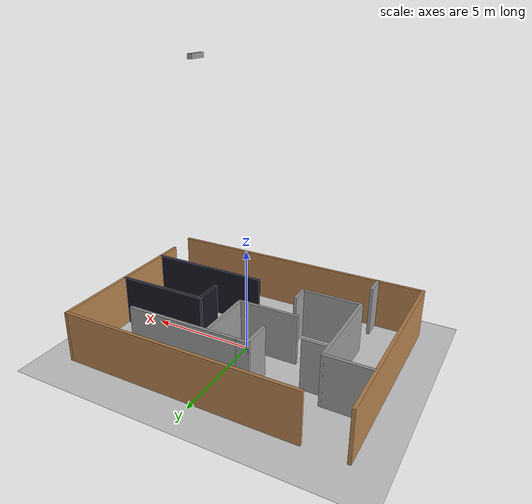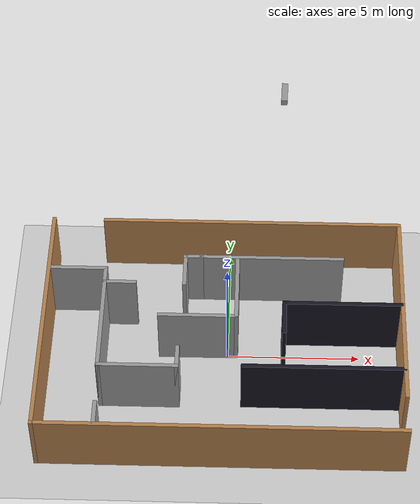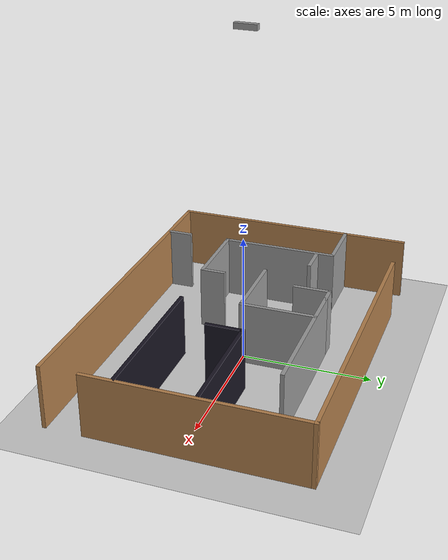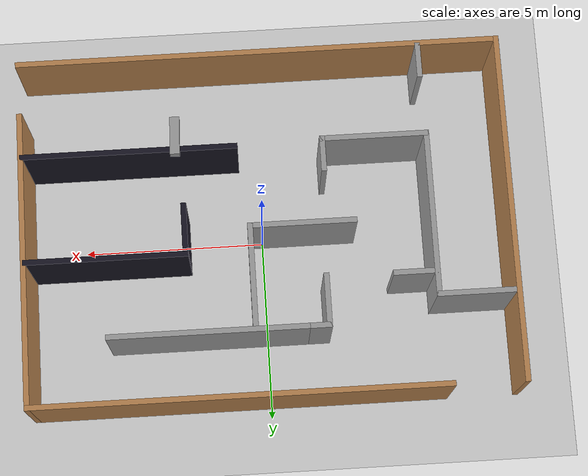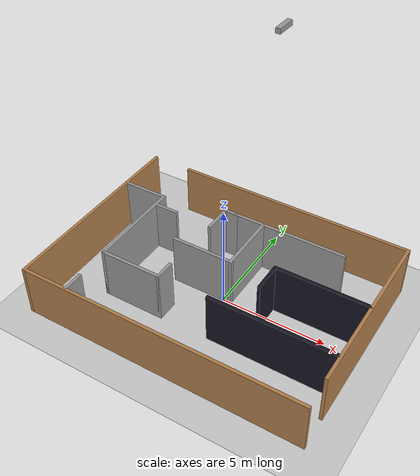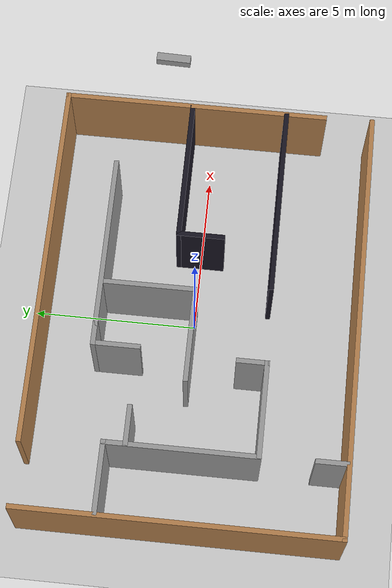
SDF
<sdf version="1.7">
 <world name="default">
  <light name="sun" type="directional">
   <pose>0 0 10 0 -0 0</pose>
   <diffuse>0.8 0.8 0.8 1</diffuse>
   <specular>0.2 0.2 0.2 1</specular>
   <attenuation>
    <range>1000</range>
    <constant>0.9</constant>
    <linear>0.01</linear>
    <quadratic>0.001</quadratic>
   </attenuation>
   <direction>-0.5 0.1 -0.9</direction>
   <spot><inner_angle>0</inner_angle><outer_angle>0</outer_angle><falloff>0</falloff></spot>
  </light>
  <model name="ground_plane">
   <static>1</static>
   <link name="link">
    <collision name="collision">
     <geometry><plane><normal>0 0 1</normal><size>100 100</size></plane></geometry>
     <surface>
      <contact><collide_bitmask>65535</collide_bitmask></contact>
      <friction><ode><mu>100</mu><mu2>50</mu2></ode></friction>
     </surface>
    </collision>
    <visual name="visual">
     <cast_shadows>0</cast_shadows>
     <geometry><plane><normal>0 0 1</normal><size>100 100</size></plane></geometry>
     <material>
      <script><uri>file://media/materials/scripts/gazebo.material</uri><name>Gazebo/Grey</name></script>
     </material>
    </visual>
   </link>
  </model>
  <gravity>0 0 -9.8</gravity>
  <magnetic_field>6e-06 2.3e-05 -4.2e-05</magnetic_field>
  <atmosphere type="adiabatic"/>
  <physics type="ode">
   <max_step_size>0.001</max_step_size>
   <real_time_factor>1</real_time_factor>
   <real_time_update_rate>1000</real_time_update_rate>
  </physics>
  <scene><ambient>0.4 0.4 0.4 1</ambient><background>0.7 0.7 0.7 1</background><shadows>1</shadows></scene>
  <audio><device>default</device></audio>
  <spherical_coordinates>
   <surface_model>EARTH_WGS84</surface_model>
   <latitude_deg>0</latitude_deg>
   <longitude_deg>0</longitude_deg>
   <elevation>0</elevation>
   <heading_deg>0</heading_deg>
  </spherical_coordinates>
  <model name="Maze_Model">
   <pose>-0.15256 -0.147687 0 0 -0 0</pose>
   <link name="Wall_103">
    <collision name="Wall_103_Collision">
     <geometry><box><size>9.75 0.15 2.5</size></box></geometry>
     <pose>0 0 1.25 0 -0 0</pose>
    </collision>
    <visual name="Wall_103_Visual">
     <pose>0 0 1.25 0 -0 0</pose>
     <geometry><box><size>9.75 0.15 2.5</size></box></geometry>
     <material>
      <script><uri>file://media/materials/scripts/gazebo.material</uri><name>Gazebo/Wood</name></script>
      <ambient>1 1 1 1</ambient>
     </material>
     <meta><layer>0</layer></meta>
    </visual>
    <pose>-6.675 -0.002144 0 0 -0 -1.5708</pose>
   </link>
   <link name="Wall_104">
    <collision name="Wall_104_Collision">
     <geometry><box><size>13.5 0.15 2.5</size></box></geometry>
     <pose>0 0 1.25 0 -0 0</pose>
    </collision>
    <visual name="Wall_104_Visual">
     <pose>0 0 1.25 0 -0 0</pose>
     <geometry><box><size>13.5 0.15 2.5</size></box></geometry>
     <material>
      <script><uri>file://media/materials/scripts/gazebo.material</uri><name>Gazebo/Wood</name></script>
      <ambient>1 1 1 1</ambient>
     </material>
     <meta><layer>0</layer></meta>
    </visual>
    <pose>0 -4.80214 0 0 -0 0</pose>
   </link>
   <link name="Wall_108">
    <collision name="Wall_108_Collision">
     <geometry><box><size>8.25 0.15 2.5</size></box></geometry>
     <pose>0 0 1.25 0 -0 0</pose>
    </collision>
    <visual name="Wall_108_Visual">
     <pose>0 0 1.25 0 -0 0</pose>
     <geometry><box><size>8.25 0.15 2.5</size></box></geometry>
     <material>
      <script><uri>file://media/materials/scripts/gazebo.material</uri><name>Gazebo/Wood</name></script>
      <ambient>1 1 1 1</ambient>
     </material>
     <meta><layer>0</layer></meta>
    </visual>
    <pose>6.67136 0.752144 0 0 -0 1.5708</pose>
   </link>
   <link name="Wall_110">
    <collision name="Wall_110_Collision">
     <geometry><box><size>11.5 0.15 2.5</size></box></geometry>
     <pose>0 0 1.25 0 -0 0</pose>
    </collision>
    <visual name="Wall_110_Visual">
     <pose>0 0 1.25 0 -0 0</pose>
     <geometry><box><size>11.5 0.15 2.5</size></box></geometry>
     <material>
      <script><uri>file://media/materials/scripts/gazebo.material</uri><name>Gazebo/Wood</name></script>
      <ambient>1 1 1 1</ambient>
     </material>
     <meta><layer>0</layer></meta>
    </visual>
    <pose>0.996361 4.80214 0 0 -0 3.14159</pose>
   </link>
   <link name="Wall_42">
    <collision name="Wall_42_Collision">
     <geometry><box><size>1 0.15 2.5</size></box></geometry>
     <pose>0 0 1.25 0 -0 0</pose>
    </collision>
    <visual name="Wall_42_Visual">
     <pose>0 0 1.25 0 -0 0</pose>
     <geometry><box><size>1 0.15 2.5</size></box></geometry>
     <material>
      <script><uri>file://media/materials/scripts/gazebo.material</uri><name>Gazebo/Grey</name></script>
      <ambient>0 0 0 1</ambient>
     </material>
     <meta><layer>0</layer></meta>
    </visual>
    <pose>-4.47101 -4.30501 0 0 -0 1.5708</pose>
   </link>
   <link name="Wall_45">
    <collision name="Wall_45_Collision">
     <geometry><box><size>6 0.15 2.5</size></box></geometry>
     <pose>0 0 1.25 0 -0 0</pose>
    </collision>
    <visual name="Wall_45_Visual">
     <pose>0 0 1.25 0 -0 0</pose>
     <geometry><box><size>6 0.15 2.5</size></box></geometry>
     <material>
      <script><uri>file://media/materials/scripts/gazebo.material</uri><name>Gazebo/Grey</name></script>
      <ambient>0.0901961 0.0784314 0.129412 1</ambient>
     </material>
     <meta><layer>0</layer></meta>
    </visual>
    <pose>3.69883 -2.11008 0 0 -0 3.14159</pose>
   </link>
   <link name="Wall_55">
    <collision name="Wall_55_Collision">
     <geometry><box><size>2.25 0.15 2.5</size></box></geometry>
     <pose>0 0 1.25 0 -0 0</pose>
    </collision>
    <visual name="Wall_55_Visual">
     <pose>0 0 1.25 0 -0 0</pose>
     <geometry><box><size>2.25 0.15 2.5</size></box></geometry>
     <material>
      <script><uri>file://media/materials/scripts/gazebo.material</uri><name>Gazebo/Grey</name></script>
      <ambient>0 0 0 1</ambient>
     </material>
     <meta><layer>0</layer></meta>
    </visual>
    <pose>-5.56225 2.35601 0 0 -0 0</pose>
   </link>
   <link name="Wall_57">
    <collision name="Wall_57_Collision">
     <geometry><box><size>4.68504 0.15 2.5</size></box></geometry>
     <pose>0 0 1.25 0 -0 0</pose>
    </collision>
    <visual name="Wall_57_Visual">
     <pose>0 0 1.25 0 -0 0</pose>
     <geometry><box><size>4.68504 0.15 2.5</size></box></geometry>
     <material>
      <script><uri>file://media/materials/scripts/gazebo.material</uri><name>Gazebo/Grey</name></script>
      <ambient>0 0 0 1</ambient>
     </material>
     <meta><layer>0</layer></meta>
    </visual>
    <pose>-4.51225 0.088489 0 0 -0 -1.5708</pose>
   </link>
   <link name="Wall_59">
    <collision name="Wall_59_Collision">
     <geometry><box><size>3 0.15 2.5</size></box></geometry>
     <pose>0 0 1.25 0 -0 0</pose>
    </collision>
    <visual name="Wall_59_Visual">
     <pose>0 0 1.25 0 -0 0</pose>
     <geometry><box><size>3 0.15 2.5</size></box></geometry>
     <material>
      <script><uri>file://media/materials/scripts/gazebo.material</uri><name>Gazebo/Grey</name></script>
      <ambient>0 0 0 1</ambient>
     </material>
     <meta><layer>0</layer></meta>
    </visual>
    <pose>-3.06412 -2.17903 0 0 -0 0</pose>
   </link>
   <link name="Wall_70">
    <collision name="Wall_70_Collision">
     <geometry><box><size>5.5 0.15 2.5</size></box></geometry>
     <pose>0 0 1.25 0 -0 0</pose>
    </collision>
    <visual name="Wall_70_Visual">
     <pose>0 0 1.25 0 -0 0</pose>
     <geometry><box><size>5.5 0.15 2.5</size></box></geometry>
     <material>
      <script><uri>file://media/materials/scripts/gazebo.material</uri><name>Gazebo/Grey</name></script>
      <ambient>0 0 0 1</ambient>
     </material>
     <meta><layer>0</layer></meta>
    </visual>
    <pose>1.76918 3.0268 0 0 -0 3.14159</pose>
   </link>
   <link name="Wall_71">
    <collision name="Wall_71_Collision">
     <geometry><box><size>0.75 0.15 2.5</size></box></geometry>
     <pose>0 0 1.25 0 -0 0</pose>
    </collision>
    <visual name="Wall_71_Visual">
     <pose>0 0 1.25 0 -0 0</pose>
     <geometry><box><size>0.75 0.15 2.5</size></box></geometry>
     <material>
      <script><uri>file://media/materials/scripts/gazebo.material</uri><name>Gazebo/Grey</name></script>
      <ambient>0 0 0 1</ambient>
     </material>
     <meta><layer>0</layer></meta>
    </visual>
    <pose>-1.20582 3.0268 0 0 -0 3.14159</pose>
   </link>
   <link name="Wall_72">
    <collision name="Wall_72_Collision">
     <geometry><box><size>1.5 0.15 2.5</size></box></geometry>
     <pose>0 0 1.25 0 -0 0</pose>
    </collision>
    <visual name="Wall_72_Visual">
     <pose>0 0 1.25 0 -0 0</pose>
     <geometry><box><size>1.5 0.15 2.5</size></box></geometry>
     <material>
      <script><uri>file://media/materials/scripts/gazebo.material</uri><name>Gazebo/Grey</name></script>
      <ambient>0 0 0 1</ambient>
     </material>
     <meta><layer>0</layer></meta>
    </visual>
    <pose>-1.50582 2.3518 0 0 -0 -1.5708</pose>
   </link>
   <link name="Wall_76">
    <collision name="Wall_76_Collision">
     <geometry><box><size>3 0.15 2.5</size></box></geometry>
     <pose>0 0 1.25 0 -0 0</pose>
    </collision>
    <visual name="Wall_76_Visual">
     <pose>0 0 1.25 0 -0 0</pose>
     <geometry><box><size>3 0.15 2.5</size></box></geometry>
     <material>
      <script><uri>file://media/materials/scripts/gazebo.material</uri><name>Gazebo/Grey</name></script>
      <ambient>0 0 0 1</ambient>
     </material>
     <meta><layer>0</layer></meta>
    </visual>
    <pose>0.480278 1.59425 0 0 -0 -1.5708</pose>
   </link>
   <link name="Wall_77">
    <collision name="Wall_77_Collision">
     <geometry><box><size>3 0.15 2.5</size></box></geometry>
     <pose>0 0 1.25 0 -0 0</pose>
    </collision>
    <visual name="Wall_77_Visual">
     <pose>0 0 1.25 0 -0 0</pose>
     <geometry><box><size>3 0.15 2.5</size></box></geometry>
     <material>
      <script><uri>file://media/materials/scripts/gazebo.material</uri><name>Gazebo/Grey</name></script>
      <ambient>0 0 0 1</ambient>
     </material>
     <meta><layer>0</layer></meta>
    </visual>
    <pose>-0.944721 0.169255 0 0 -0 3.14159</pose>
   </link>
   <link name="Wall_79">
    <collision name="Wall_79_Collision">
     <geometry><box><size>1.25 0.15 2.5</size></box></geometry>
     <pose>0 0 1.25 0 -0 0</pose>
    </collision>
    <visual name="Wall_79_Visual">
     <pose>0 0 1.25 0 -0 0</pose>
     <geometry><box><size>1.25 0.15 2.5</size></box></geometry>
     <material>
      <script><uri>file://media/materials/scripts/gazebo.material</uri><name>Gazebo/Grey</name></script>
      <ambient>0 0 0 1</ambient>
     </material>
     <meta><layer>0</layer></meta>
    </visual>
    <pose>-3.9369 1.7075 0 0 -0 0</pose>
   </link>
   <link name="Wall_91">
    <collision name="Wall_91_Collision">
     <geometry><box><size>4.5 0.15 2.5</size></box></geometry>
     <pose>0 0 1.25 0 -0 0</pose>
    </collision>
    <visual name="Wall_91_Visual">
     <pose>0 0 1.25 0 -0 0</pose>
     <geometry><box><size>4.5 0.15 2.5</size></box></geometry>
     <material>
      <script><uri>file://media/materials/scripts/gazebo.material</uri><name>Gazebo/Grey</name></script>
      <ambient>0.0901961 0.0784314 0.129412 1</ambient>
     </material>
     <meta><layer>0</layer></meta>
    </visual>
    <pose>4.44019 0.854872 0 0 -0 3.14159</pose>
   </link>
   <link name="Wall_92">
    <collision name="Wall_92_Collision">
     <geometry><box><size>1.5 0.15 2.5</size></box></geometry>
     <pose>0 0 1.25 0 -0 0</pose>
    </collision>
    <visual name="Wall_92_Visual">
     <pose>0 0 1.25 0 -0 0</pose>
     <geometry><box><size>1.5 0.15 2.5</size></box></geometry>
     <material>
      <script><uri>file://media/materials/scripts/gazebo.material</uri><name>Gazebo/Grey</name></script>
      <ambient>0.0901961 0.0784314 0.129412 1</ambient>
     </material>
     <meta><layer>0</layer></meta>
    </visual>
    <pose>2.26519 0.179872 0 0 -0 -1.5708</pose>
   </link>
   <link name="Wall_94">
    <collision name="Wall_94_Collision">
     <geometry><box><size>1 0.15 2.5</size></box></geometry>
     <pose>0 0 1.25 0 -0 0</pose>
    </collision>
    <visual name="Wall_94_Visual">
     <pose>0 0 1.25 0 -0 0</pose>
     <geometry><box><size>1 0.15 2.5</size></box></geometry>
     <material>
      <script><uri>file://media/materials/scripts/gazebo.material</uri><name>Gazebo/Grey</name></script>
      <ambient>0 0 0 1</ambient>
     </material>
     <meta><layer>0</layer></meta>
    </visual>
    <pose>-1.63912 -1.75403 0 0 -0 1.5708</pose>
   </link>
   <static>1</static>
  </model>
  <model name="temp_model_camera">
   <link name="link_1">
    <inertial>
     <mass>1</mass>
     <inertia>
      <ixx>0.166667</ixx>
      <ixy>0</ixy>
      <ixz>0</ixz>
      <iyy>0.166667</iyy>
      <iyz>0</iyz>
      <izz>0.166667</izz>
     </inertia>
    </inertial>
    <pose>4e-06 0 -9e-06 0 -0 1.48134</pose>
    <visual name="visual">
     <geometry><box><size>0.8 0.2 0.2</size></box></geometry>
     <material>
      <lighting>1</lighting>
      <script><uri>file://media/materials/scripts/gazebo.material</uri><name>Gazebo/Grey</name></script>
      <shader type="pixel"><normal_map>__default__</normal_map></shader>
      <ambient>0.3 0.3 0.3 1</ambient>
      <diffuse>0.7 0.7 0.7 1</diffuse>
      <specular>0.01 0.01 0.01 1</specular>
      <emissive>0 0 0 1</emissive>
     </material>
    </visual>
    <collision name="collision">
     <geometry><box><size>0.8 0.2 0.2</size></box></geometry>
     <surface>
      <friction>
       <ode><mu>1</mu><mu2>1</mu2><fdir1>0 0 0</fdir1><slip1>0</slip1><slip2>0</slip2></ode>
       <torsional>
        <coefficient>1</coefficient>
        <patch_radius>0</patch_radius>
        <surface_radius>0</surface_radius>
        <use_patch_radius>1</use_patch_radius>
        <ode><slip>0</slip></ode>
       </torsional>
      </friction>
      <bounce><restitution_coefficient>0</restitution_coefficient><threshold>1e+06</threshold></bounce>
      <contact>
       <collide_without_contact>0</collide_without_contact>
       <collide_without_contact_bitmask>1</collide_without_contact_bitmask>
       <collide_bitmask>1</collide_bitmask>
       <ode>
        <soft_cfm>0</soft_cfm>
        <soft_erp>0.2</soft_erp>
        <kp>1e+13</kp>
        <kd>1</kd>
        <max_vel>0.01</max_vel>
        <min_depth>0</min_depth>
       </ode>
       <bullet>
        <split_impulse>1</split_impulse>
        <split_impulse_penetration_threshold>-0.01</split_impulse_penetration_threshold>
        <soft_cfm>0</soft_cfm>
        <soft_erp>0.2</soft_erp>
        <kp>1e+13</kp>
        <kd>1</kd>
       </bullet>
      </contact>
     </surface>
    </collision>
   </link>
   <static>0</static>
   <pose>1.82115 0.716029 13.2138 0 -0 0.060155</pose>
  </model>
 </world>
</sdf>
